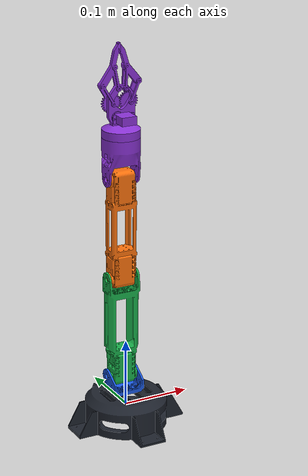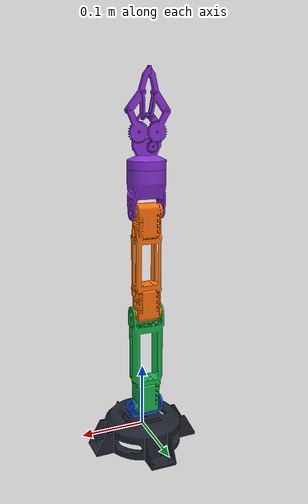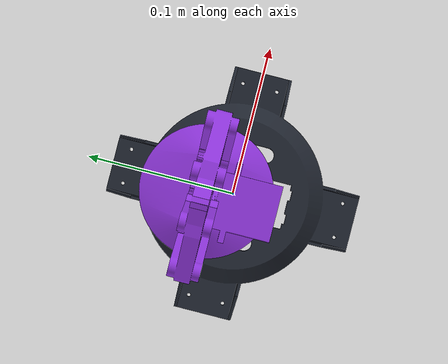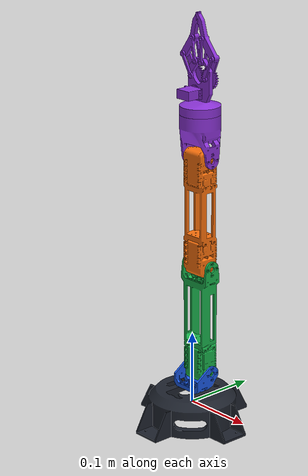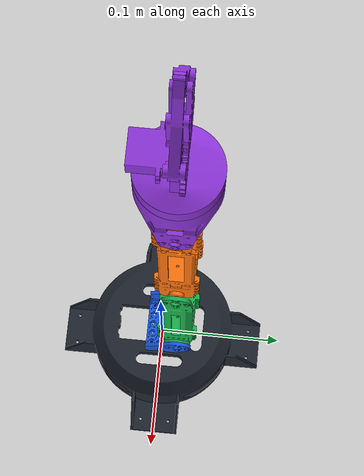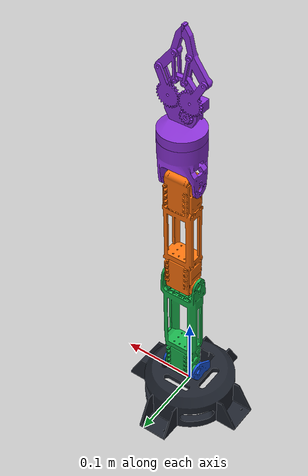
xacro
<?xml version="1.0"?>

<robot xmlns:xacro="http://www.ros.org/wiki/xacro"
       name="dynamixel_6dof_arm">

    <!-- Materials                 -->

    <material name="gray">
        <color rgba="0.5 0.5 0.5 1"/>
    </material>

    <material name="dark_gray">
        <color rgba="0.25 0.25 0.25 1"/>
    </material>

    <material name="base_charcoal">
        <color rgba="0.12 0.14 0.18 1"/>
    </material>
    <material name="shoulder_blue">
        <color rgba="0.10 0.35 0.90 1"/>
    </material>
    <material name="upper_arm_green">
        <color rgba="0.10 0.70 0.30 1"/>
    </material>
    <material name="forearm_orange">
        <color rgba="1.00 0.45 0.05 1"/>
    </material>
    <material name="gripper_purple">
        <color rgba="0.55 0.20 0.85 1"/>
    </material>

    <!-- Link Macro                -->

    <xacro:macro name="cylinder_link"
                 params="name radius length mass">

        <link name="${name}">

            <visual>
                <geometry>
                    <cylinder radius="${radius}"
                              length="${length}"/>
                </geometry>

                <material name="gray"/>
            </visual>

            <collision>
                <geometry>
                    <cylinder radius="${radius}"
                              length="${length}"/>
                </geometry>
            </collision>

            <inertial>

                <mass value="${mass}"/>

                <inertia
                    ixx="0.001"
                    ixy="0"
                    ixz="0"
                    iyy="0.001"
                    iyz="0"
                    izz="0.001"/>

            </inertial>

        </link>

    </xacro:macro>

    <!-- Links                     -->

    <!-- base -->
    <link name="base_link">
        <visual>
            <origin xyz="0 0 0" rpy="0 0 0"/>

            <geometry>
                <mesh
                    filename="../meshes/base_link.stl"
                    scale="0.001 0.001 0.001"/>
            </geometry>

            <material name="base_charcoal"/>
        </visual>

        <collision>
            <origin xyz="0 0 0" rpy="0 0 0"/>
            <geometry>
                <mesh filename="../meshes/base_link.stl"
                      scale="0.001 0.001 0.001"/>
            </geometry>
        </collision>

        <inertial>
            <mass value="1.0"/>
            <inertia
                ixx="0.001" ixy="0" ixz="0"
                iyy="0.001" iyz="0"
                izz="0.001"/>
        </inertial>
    </link>

    <!-- shoulder_link -->
    <link name="shoulder_link">
        <visual>
            <origin xyz="0 0.015 0.007" rpy="3.14159 0 0"/>

            <geometry>
                <mesh
                    filename="../meshes/shoulder_link.stl"
                    scale="0.001 0.001 0.001"/>
            </geometry>

            <material name="shoulder_blue"/>
        </visual>

        <collision>
            <origin xyz="0 0.015 0.007" rpy="3.14159 0 0"/>
            <geometry>
                <mesh filename="../meshes/shoulder_link.stl"
                      scale="0.001 0.001 0.001"/>
            </geometry>
        </collision>

        <inertial>
            <mass value="0.3"/>
            <inertia
                ixx="0.001" ixy="0" ixz="0"
                iyy="0.001" iyz="0"
                izz="0.001"/>
        </inertial>
    </link>

    <!-- upper_arm_link -->
    <link name="upper_arm_link">
        <visual>
            <origin xyz="-0.015 0 0.139" rpy="1.570795 -1.570795 1.570795"/>

            <geometry>
                <mesh
                    filename="../meshes/upper_arm_link.stl"
                    scale="0.001 0.001 0.001"/>
            </geometry>

            <material name="upper_arm_green"/>
        </visual>

        <collision>
            <origin xyz="-0.015 0 0.139"
                    rpy="1.570795 -1.570795 1.570795"/>
            <geometry>
                <mesh filename="../meshes/upper_arm_link.stl"
                      scale="0.001 0.001 0.001"/>
            </geometry>
        </collision>

        <inertial>
            <mass value="0.2"/>
            <inertia
                ixx="0.001" ixy="0" ixz="0"
                iyy="0.001" iyz="0"
                izz="0.001"/>
        </inertial>
    </link>

    <!-- forearm_link -->
    <link name="forearm_link">
        <visual>
            <origin xyz="0 -0.032 0.109" rpy="1.570795 0 1.570795"/>

            <geometry>
                <mesh
                    filename="../meshes/forearm_link.stl"
                    scale="0.001 0.001 0.001"/>
            </geometry>

            <material name="forearm_orange"/>
        </visual>

        <collision>
            <origin xyz="0 -0.032 0.109" rpy="1.570795 0 1.570795"/>
            <geometry>
                <mesh filename="../meshes/forearm_link.stl"
                      scale="0.001 0.001 0.001"/>
            </geometry>
        </collision>

        <inertial>
            <mass value="0.2"/>
            <inertia
                ixx="0.001" ixy="0" ixz="0"
                iyy="0.001" iyz="0"
                izz="0.001"/>
        </inertial>
    </link>

    <!-- Gripper body. -->
    <link name="gripper_link">
        <visual>
            <origin xyz="0 0 0.001" rpy="1.57079632679 0 0"/>

            <geometry>
                <mesh
                    filename="../meshes/PRY.stl"
                    scale="0.001 0.001 0.001"/>
            </geometry>

            <material name="gripper_purple"/>
        </visual>

        <collision>
            <origin xyz="0 0 0.001" rpy="1.57079632679 0 0"/>
            <geometry>
                <mesh filename="../meshes/PRY.stl"
                      scale="0.001 0.001 0.001"/>
            </geometry>
        </collision>

        <inertial>
            <mass value="0.1"/>
            <inertia
                ixx="0.001" ixy="0" ixz="0"
                iyy="0.001" iyz="0"
                izz="0.001"/>
        </inertial>
    </link>

    <link name="gripper_end">
        <visual>
            <!-- PRY_2 shares PRY's exported frame. The local Z offset
                 compensates for gripper_end_joint's 0.04 m translation. -->
            <origin xyz="0 0 -0.039" rpy="1.57079632679 0 0"/>
            <geometry>
                <mesh
                    filename="../meshes/PRY_2.stl"
                    scale="0.001 0.001 0.001"/>
            </geometry>
            <material name="gripper_purple"/>
        </visual>

        <collision name="gripper_end_collision">
            <origin xyz="0 0 -0.039" rpy="1.57079632679 0 0"/>
            <geometry>
                <mesh filename="../meshes/PRY_2.stl"
                      scale="0.001 0.001 0.001"/>
            </geometry>
        </collision>
    </link>

    <link name="servo_gripper">
        <visual>
            <origin xyz="0.0075 0 -0.088" rpy="1.57079632679 0 0"/>
            <geometry>
                <mesh filename="../meshes/servo_gripper.stl"
                      scale="0.001 0.001 0.001"/>
            </geometry>
            <material name="gripper_purple"/>
        </visual>
        <collision name="servo_gripper_collision">
            <origin xyz="0.0075 0 -0.088" rpy="1.57079632679 0 0"/>
            <geometry>
                <mesh filename="../meshes/servo_gripper.stl"
                      scale="0.001 0.001 0.001"/>
            </geometry>
        </collision>
        <inertial>
            <mass value="0.05"/>
            <inertia ixx="0.00001" ixy="0" ixz="0"
                     iyy="0.00001" iyz="0" izz="0.00001"/>
        </inertial>
    </link>

    <link name="gripper_leg_1">
        <visual>
            <origin xyz="-0.0135 0 -0.109" rpy="1.57079632679 0 0"/>
            <geometry>
                <mesh filename="../meshes/grip_leg_1.stl"
                      scale="0.001 0.001 0.001"/>
            </geometry>
            <material name="gripper_purple"/>
        </visual>
        <collision name="gripper_leg_1_collision">
            <origin xyz="-0.0135 0 -0.109" rpy="1.57079632679 0 0"/>
            <geometry>
                <mesh filename="../meshes/grip_leg_1.stl"
                      scale="0.001 0.001 0.001"/>
            </geometry>
        </collision>
        <inertial>
            <mass value="0.04"/>
            <inertia ixx="0.00002" ixy="0" ixz="0"
                     iyy="0.00002" iyz="0" izz="0.00002"/>
        </inertial>
    </link>

    <link name="gripper_leg_2">
        <visual>
            <origin xyz="0.0135 0 -0.109" rpy="1.57079632679 0 0"/>
            <geometry>
                <mesh filename="../meshes/grip_leg_2.stl"
                      scale="0.001 0.001 0.001"/>
            </geometry>
            <material name="gripper_purple"/>
        </visual>
        <collision name="gripper_leg_2_collision">
            <origin xyz="0.0135 0 -0.109" rpy="1.57079632679 0 0"/>
            <geometry>
                <mesh filename="../meshes/grip_leg_2.stl"
                      scale="0.001 0.001 0.001"/>
            </geometry>
        </collision>
        <inertial>
            <mass value="0.04"/>
            <inertia ixx="0.00002" ixy="0" ixz="0"
                     iyy="0.00002" iyz="0" izz="0.00002"/>
        </inertial>
    </link>

    <link name="tool0"/>

    <!-- Joints                    -->

    <!-- Base rotation -->
    <joint name="base_joint"
           type="revolute">

        <parent link="base_link"/>
        <child link="shoulder_link"/>

        <origin xyz="0 0 0.03585"
                rpy="0 0 0"/>

        <axis xyz="0 0 1"/>

        <limit
            lower="-3.14"
            upper="3.14"
            effort="1.5"
            velocity="2"/>

    </joint>

    <!-- Shoulder -->
    <joint name="shoulder_joint"
           type="revolute">

        <parent link="shoulder_link"/>
        <child link="upper_arm_link"/>

        <origin xyz="0 0.014 0.005"
                rpy="0 0 0"/>

        <axis xyz="1 0 0"/>

        <limit
            lower="-1.57"
            upper="1.57"
            effort="1.5"
            velocity="2"/>

    </joint>

    <!-- Elbow -->
    <joint name="elbow_joint"
           type="revolute">

        <parent link="upper_arm_link"/>
        <child link="forearm_link"/>

        <origin xyz="0 0 0.1545"
                rpy="0 0 0"/>

        <axis xyz="1 0 0"/>

        <limit
            lower="-1.57"
            upper="1.57"
            effort="1.5"
            velocity="2"/>

    </joint>

    <!-- Wrist / Gripper -->
    <joint name="wrist_joint"
           type="revolute">

        <parent link="forearm_link"/>
        <child link="gripper_link"/>

        <origin xyz="0 0 0.15"
                rpy="0 0 0"/>

        <axis xyz="1 0 0"/>

        <limit
            lower="-1.57"
            upper="1.57"
            effort="1.0"
            velocity="2"/>

    </joint>

    <joint name="gripper_end_joint" type="revolute">
        <parent link="gripper_link"/>
        <child link="gripper_end"/>
        <origin xyz="0 0 0.04" rpy="0 0 0"/>
        <axis xyz="0 0 1"/>
        <limit lower="-1.57" upper="1.57" effort="1.0" velocity="2.0"/>
    </joint>

    <!-- Positive servo motion is clockwise when viewed along the assembly's
         positive Z axis. The equal-size gears give both legs a 1:1 ratio. -->
    <joint name="servo_gripper_joint" type="revolute">
        <parent link="gripper_end"/>
        <child link="servo_gripper"/>
        <origin xyz="-0.0075 0 0.049" rpy="0 0 0"/>
        <axis xyz="0 1 0"/>
        <limit lower="-0.785398" upper="0.785398"
               effort="1.0" velocity="2.0"/>
    </joint>

    <joint name="gripper_leg_1_joint" type="revolute">
        <parent link="gripper_end"/>
        <child link="gripper_leg_1"/>
        <origin xyz="0.0135 0 0.070" rpy="0 0 0"/>
        <axis xyz="0 1 0"/>
        <limit lower="-0.785398" upper="0.785398"
               effort="1.0" velocity="2.0"/>
        <mimic joint="servo_gripper_joint" multiplier="1.0" offset="0.0"/>
    </joint>

    <joint name="gripper_leg_2_joint" type="revolute">
        <parent link="gripper_end"/>
        <child link="gripper_leg_2"/>
        <origin xyz="-0.0135 0 0.070" rpy="0 0 0"/>
        <axis xyz="0 1 0"/>
        <limit lower="-0.785398" upper="0.785398"
               effort="1.0" velocity="2.0"/>
        <mimic joint="servo_gripper_joint" multiplier="-1.0" offset="0.0"/>
    </joint>

    <joint name="tool0_joint" type="fixed">
        <parent link="gripper_end"/>
        <child link="tool0"/>
        <origin xyz="0 0 0.12" rpy="0 0 0"/>
    </joint>

    <!-- ros2_control mock system  -->

    <!-- Only independently actuated joints are exported. The two gripper-leg
         joints remain URDF mimic joints and tool0_joint remains fixed. -->
    <ros2_control name="RobotArmMockSystem" type="system">
        <hardware>
            <plugin>mock_components/GenericSystem</plugin>
        </hardware>

        <joint name="base_joint">
            <command_interface name="position"/>
            <state_interface name="position">
                <param name="initial_value">0.0</param>
            </state_interface>
        </joint>

        <joint name="shoulder_joint">
            <command_interface name="position"/>
            <state_interface name="position">
                <param name="initial_value">0.0</param>
            </state_interface>
        </joint>

        <joint name="elbow_joint">
            <command_interface name="position"/>
            <state_interface name="position">
                <param name="initial_value">0.0</param>
            </state_interface>
        </joint>

        <joint name="wrist_joint">
            <command_interface name="position"/>
            <state_interface name="position">
                <param name="initial_value">0.0</param>
            </state_interface>
        </joint>

        <joint name="gripper_end_joint">
            <command_interface name="position"/>
            <state_interface name="position">
                <param name="initial_value">0.0</param>
            </state_interface>
        </joint>

        <joint name="servo_gripper_joint">
            <command_interface name="position"/>
            <state_interface name="position">
                <param name="initial_value">0.0</param>
            </state_interface>
            <state_interface name="velocity"/>
        </joint>
    </ros2_control>

</robot>
